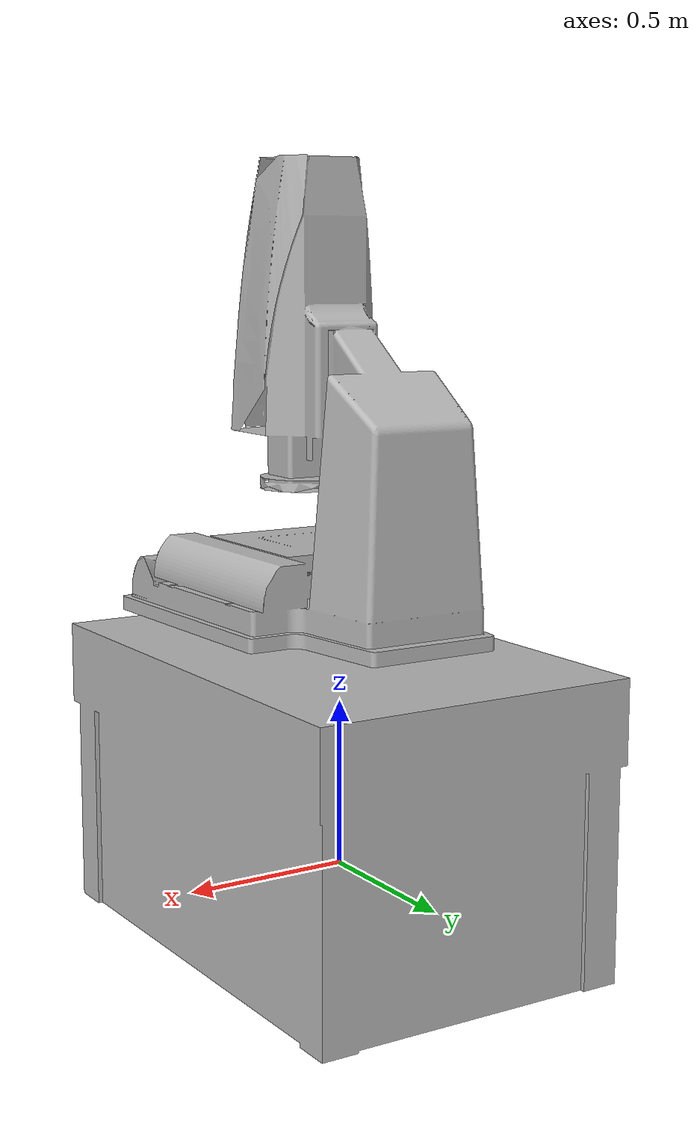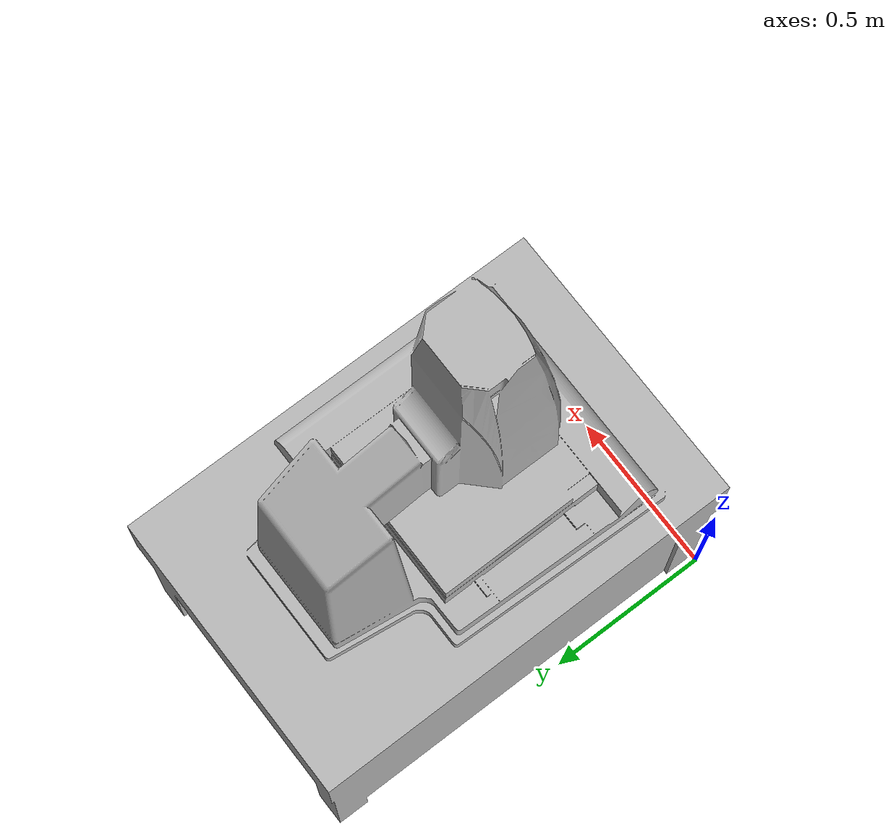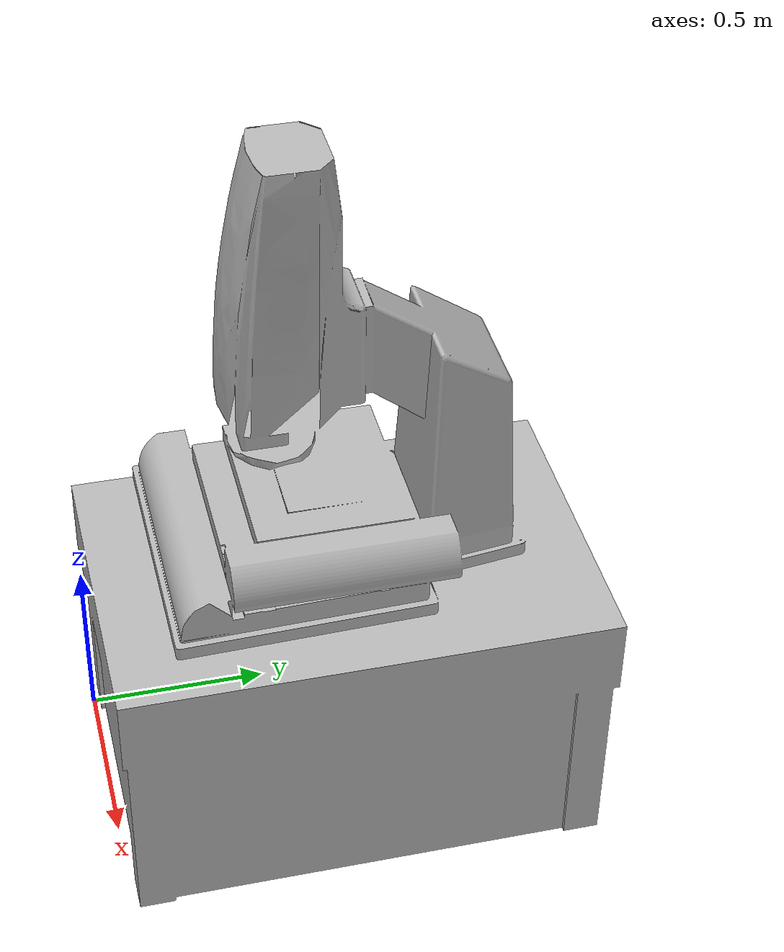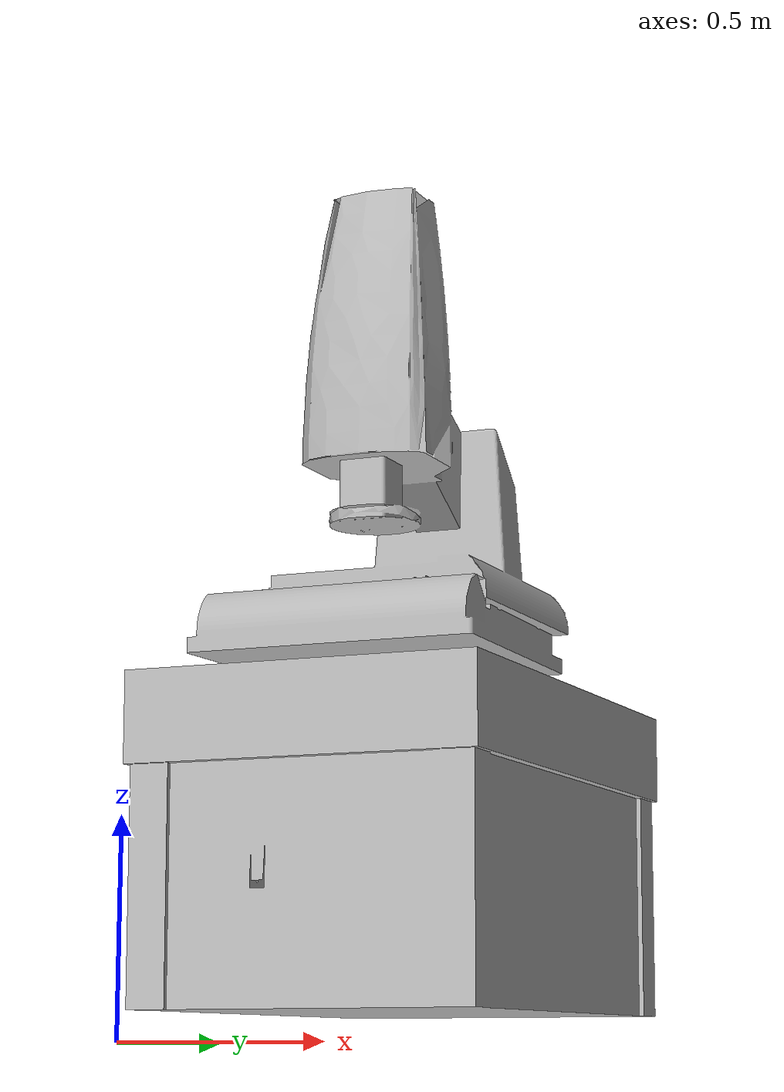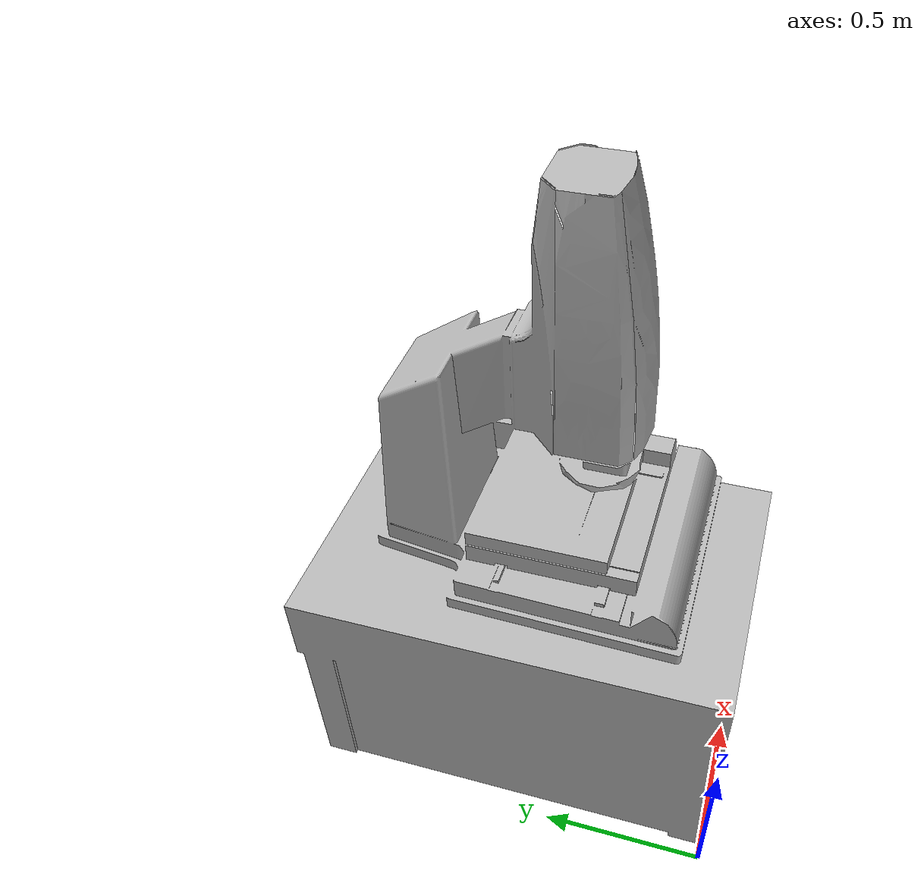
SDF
<?xml version="1.0" ?>
<sdf version="1.6">
  <model name="vertex">
    <static>true</static>
    <link name="link">
      <collision name="collision">
        <geometry>
          <mesh>
            <scale>0.03 0.03 0.03</scale>
            <uri>model://vertex/meshes/vertex.dae</uri>
          </mesh>
        </geometry>
      </collision>
      <visual name="visual">
        <geometry>
          <mesh>
            <scale>0.03 0.03 0.03</scale>
            <uri>model://vertex/meshes/vertex.dae</uri>
          </mesh>
        </geometry>
      </visual>
    </link>
  </model>
</sdf>
